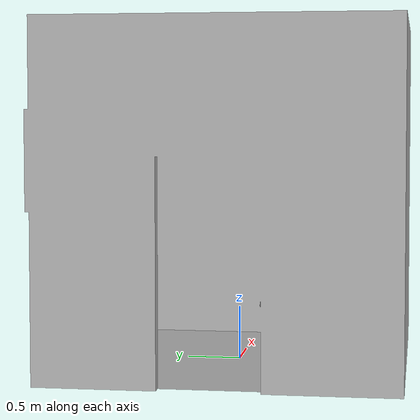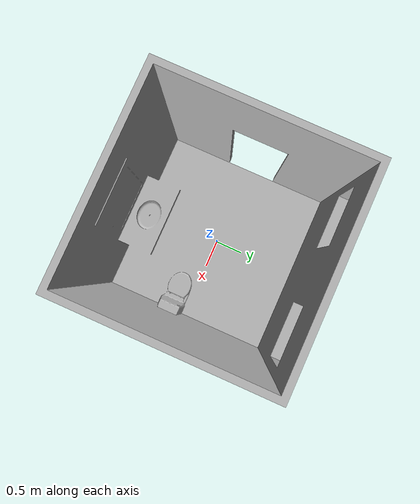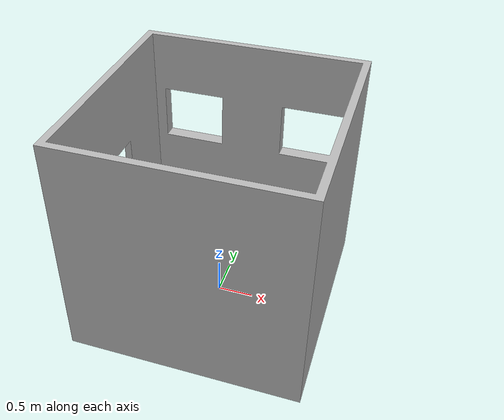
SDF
<sdf version='1.6'>
  <model name='bathroom_config_3'>
  <static>true</static>
    <link name='link'>
      <collision name="collision">
        <geometry>
          <mesh>
            <scale>1 1 1</scale>
            <uri>model://bathroom_config_3/meshes/bathroom_config_3.dae</uri>
          </mesh>
        </geometry>
      </collision>
      <visual name='visual'>
        <geometry>
          <mesh>
            <scale>1 1 1</scale>
            <uri>model://bathroom_config_3/meshes/bathroom_config_3.dae</uri>
          </mesh>
        </geometry>
      </visual>
    </link>
  </model>
</sdf>
